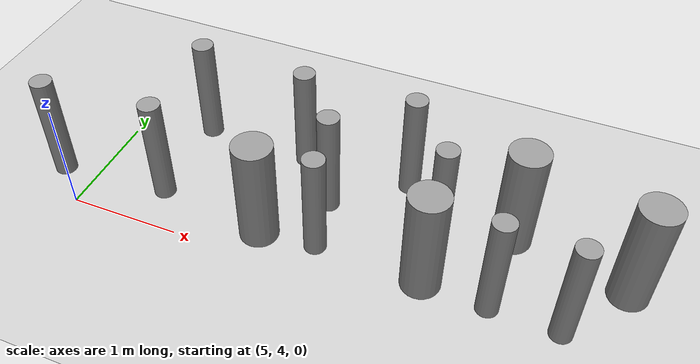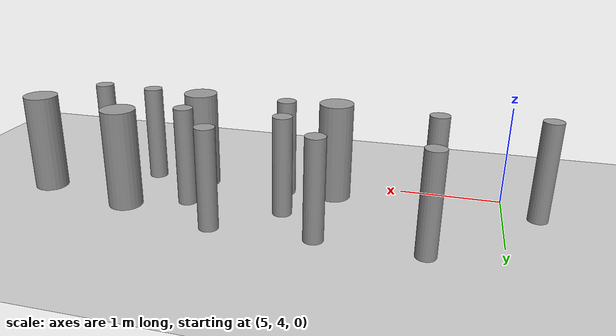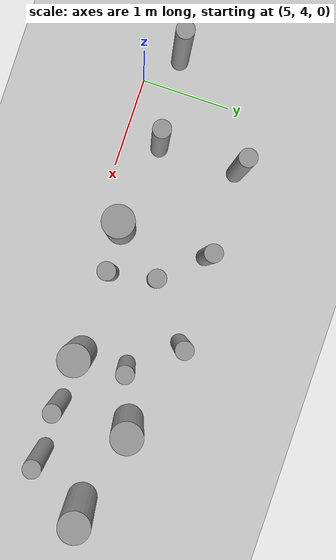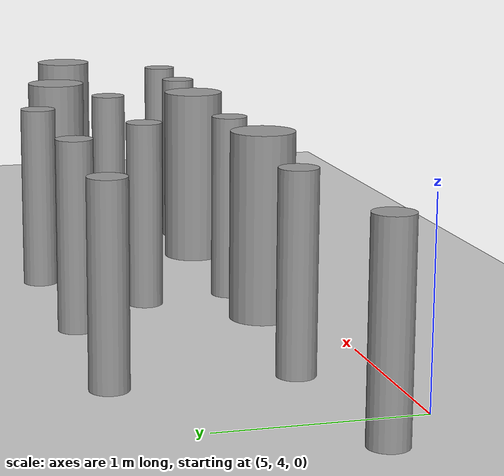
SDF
<sdf version="1.6">
 <world name="default">
  <model name="ground_plane">
   <static>1</static>
   <link name="link">
    <collision name="collision">
     <geometry><plane><normal>0 0 1</normal><size>100 100</size></plane></geometry>
     <surface><friction><ode><mu>100</mu><mu2>50</mu2></ode></friction></surface>
    </collision>
    <visual name="visual">
     <cast_shadows>0</cast_shadows>
     <geometry><plane><normal>0 0 1</normal><size>100 100</size></plane></geometry>
     <material>
      <script><uri>file://media/materials/scripts/gazebo.material</uri><name>Gazebo/Grey</name></script>
     </material>
    </visual>
   </link>
  </model>
  <model name="cyl_wall_clone_clone_3_clone_2_clone_2">
   <link name="link_0">
    <pose>-2.73893 -0.366465 0 0 -0 0</pose>
    <inertial>
     <mass>0.0374993</mass>
     <inertia>
      <ixx>0.00321281</ixx>
      <ixy>0</ixy>
      <ixz>0</ixz>
      <iyy>0.00321281</iyy>
      <iyz>0</iyz>
      <izz>0.000175774</izz>
     </inertia>
    </inertial>
    <visual name="visual">
     <geometry><cylinder><radius>0.0968661</radius><length>1</length></cylinder></geometry>
     <material>
      <lighting>1</lighting>
      <script><uri>file://media/materials/scripts/gazebo.material</uri><name>Gazebo/Grey</name></script>
      <ambient>0.3 0.3 0.3 1</ambient>
      <diffuse>0.7 0.7 0.7 1</diffuse>
      <specular>0.01 0.01 0.01 1</specular>
      <emissive>0 0 0 1</emissive>
     </material>
    </visual>
    <collision name="collision">
     <geometry><cylinder><radius>0.096866</radius><length>1</length></cylinder></geometry>
     <surface>
      <friction>
       <ode><mu>1</mu><mu2>1</mu2><fdir1>0 0 0</fdir1><slip1>0</slip1><slip2>0</slip2></ode>
       <torsional>
        <coefficient>1</coefficient>
        <patch_radius>0</patch_radius>
        <surface_radius>0</surface_radius>
        <use_patch_radius>1</use_patch_radius>
        <ode><slip>0</slip></ode>
       </torsional>
      </friction>
      <bounce><restitution_coefficient>0</restitution_coefficient><threshold>1e+06</threshold></bounce>
      <contact>
       <collide_without_contact>0</collide_without_contact>
       <collide_without_contact_bitmask>1</collide_without_contact_bitmask>
       <collide_bitmask>1</collide_bitmask>
       <ode>
        <soft_cfm>0</soft_cfm>
        <soft_erp>0.2</soft_erp>
        <kp>1e+13</kp>
        <kd>1</kd>
        <max_vel>0.01</max_vel>
        <min_depth>0</min_depth>
       </ode>
       <bullet>
        <split_impulse>1</split_impulse>
        <split_impulse_penetration_threshold>-0.01</split_impulse_penetration_threshold>
        <soft_cfm>0</soft_cfm>
        <soft_erp>0.2</soft_erp>
        <kp>1e+13</kp>
        <kd>1</kd>
       </bullet>
      </contact>
     </surface>
    </collision>
   </link>
   <link name="link_0_clone">
    <pose>-1.73893 0.61877 0 0 -0 0</pose>
    <inertial>
     <mass>0.0374993</mass>
     <inertia>
      <ixx>0.00321281</ixx>
      <ixy>0</ixy>
      <ixz>0</ixz>
      <iyy>0.00321281</iyy>
      <iyz>0</iyz>
      <izz>0.000175774</izz>
     </inertia>
    </inertial>
    <visual name="visual">
     <geometry><cylinder><radius>0.0968661</radius><length>1</length></cylinder></geometry>
     <material>
      <lighting>1</lighting>
      <script><uri>file://media/materials/scripts/gazebo.material</uri><name>Gazebo/Grey</name></script>
      <ambient>0.3 0.3 0.3 1</ambient>
      <diffuse>0.7 0.7 0.7 1</diffuse>
      <specular>0.01 0.01 0.01 1</specular>
      <emissive>0 0 0 1</emissive>
      <shader type="pixel"/>
     </material>
    </visual>
    <collision name="collision">
     <geometry><cylinder><radius>0.096866</radius><length>1</length></cylinder></geometry>
     <surface>
      <friction>
       <ode><mu>1</mu><mu2>1</mu2><fdir1>0 0 0</fdir1><slip1>0</slip1><slip2>0</slip2></ode>
       <torsional>
        <coefficient>1</coefficient>
        <patch_radius>0</patch_radius>
        <surface_radius>0</surface_radius>
        <use_patch_radius>1</use_patch_radius>
        <ode><slip>0</slip></ode>
       </torsional>
      </friction>
      <bounce><restitution_coefficient>0</restitution_coefficient><threshold>1e+06</threshold></bounce>
      <contact>
       <collide_without_contact>0</collide_without_contact>
       <collide_without_contact_bitmask>1</collide_without_contact_bitmask>
       <collide_bitmask>1</collide_bitmask>
       <ode>
        <soft_cfm>0</soft_cfm>
        <soft_erp>0.2</soft_erp>
        <kp>1e+13</kp>
        <kd>1</kd>
        <max_vel>0.01</max_vel>
        <min_depth>0</min_depth>
       </ode>
       <bullet>
        <split_impulse>1</split_impulse>
        <split_impulse_penetration_threshold>-0.01</split_impulse_penetration_threshold>
        <soft_cfm>0</soft_cfm>
        <soft_erp>0.2</soft_erp>
        <kp>1e+13</kp>
        <kd>1</kd>
       </bullet>
      </contact>
     </surface>
    </collision>
   </link>
   <link name="link_0_clone_clone">
    <pose>-0.327073 0.143919 0 0 -0 0</pose>
    <inertial>
     <mass>0.0374993</mass>
     <inertia>
      <ixx>0.00321281</ixx>
      <ixy>0</ixy>
      <ixz>0</ixz>
      <iyy>0.00321281</iyy>
      <iyz>0</iyz>
      <izz>0.000175774</izz>
     </inertia>
    </inertial>
    <visual name="visual">
     <geometry><cylinder><radius>0.0968661</radius><length>1</length></cylinder></geometry>
     <material>
      <lighting>1</lighting>
      <script><uri>file://media/materials/scripts/gazebo.material</uri><name>Gazebo/Grey</name></script>
      <ambient>0.3 0.3 0.3 1</ambient>
      <diffuse>0.7 0.7 0.7 1</diffuse>
      <specular>0.01 0.01 0.01 1</specular>
      <emissive>0 0 0 1</emissive>
      <shader type="pixel"/>
     </material>
    </visual>
    <collision name="collision">
     <geometry><cylinder><radius>0.096866</radius><length>1</length></cylinder></geometry>
     <surface>
      <friction>
       <ode><mu>1</mu><mu2>1</mu2><fdir1>0 0 0</fdir1><slip1>0</slip1><slip2>0</slip2></ode>
       <torsional>
        <coefficient>1</coefficient>
        <patch_radius>0</patch_radius>
        <surface_radius>0</surface_radius>
        <use_patch_radius>1</use_patch_radius>
        <ode><slip>0</slip></ode>
       </torsional>
      </friction>
      <bounce><restitution_coefficient>0</restitution_coefficient><threshold>1e+06</threshold></bounce>
      <contact>
       <collide_without_contact>0</collide_without_contact>
       <collide_without_contact_bitmask>1</collide_without_contact_bitmask>
       <collide_bitmask>1</collide_bitmask>
       <ode>
        <soft_cfm>0</soft_cfm>
        <soft_erp>0.2</soft_erp>
        <kp>1e+13</kp>
        <kd>1</kd>
        <max_vel>0.01</max_vel>
        <min_depth>0</min_depth>
       </ode>
       <bullet>
        <split_impulse>1</split_impulse>
        <split_impulse_penetration_threshold>-0.01</split_impulse_penetration_threshold>
        <soft_cfm>0</soft_cfm>
        <soft_erp>0.2</soft_erp>
        <kp>1e+13</kp>
        <kd>1</kd>
       </bullet>
      </contact>
     </surface>
    </collision>
   </link>
   <link name="link_0_clone_clone_0">
    <pose>1.26107 -0.419359 0 0 -0 0</pose>
    <inertial>
     <mass>0.0374993</mass>
     <inertia>
      <ixx>0.00321281</ixx>
      <ixy>0</ixy>
      <ixz>0</ixz>
      <iyy>0.00321281</iyy>
      <iyz>0</iyz>
      <izz>0.000175774</izz>
     </inertia>
    </inertial>
    <visual name="visual">
     <geometry><cylinder><radius>0.0968661</radius><length>1</length></cylinder></geometry>
     <material>
      <lighting>1</lighting>
      <script><uri>file://media/materials/scripts/gazebo.material</uri><name>Gazebo/Grey</name></script>
      <ambient>0.3 0.3 0.3 1</ambient>
      <diffuse>0.7 0.7 0.7 1</diffuse>
      <specular>0.01 0.01 0.01 1</specular>
      <emissive>0 0 0 1</emissive>
      <shader type="pixel"/>
     </material>
    </visual>
    <collision name="collision">
     <geometry><cylinder><radius>0.096866</radius><length>1</length></cylinder></geometry>
     <surface>
      <friction>
       <ode><mu>1</mu><mu2>1</mu2><fdir1>0 0 0</fdir1><slip1>0</slip1><slip2>0</slip2></ode>
       <torsional>
        <coefficient>1</coefficient>
        <patch_radius>0</patch_radius>
        <surface_radius>0</surface_radius>
        <use_patch_radius>1</use_patch_radius>
        <ode><slip>0</slip></ode>
       </torsional>
      </friction>
      <bounce><restitution_coefficient>0</restitution_coefficient><threshold>1e+06</threshold></bounce>
      <contact>
       <collide_without_contact>0</collide_without_contact>
       <collide_without_contact_bitmask>1</collide_without_contact_bitmask>
       <collide_bitmask>1</collide_bitmask>
       <ode>
        <soft_cfm>0</soft_cfm>
        <soft_erp>0.2</soft_erp>
        <kp>1e+13</kp>
        <kd>1</kd>
        <max_vel>0.01</max_vel>
        <min_depth>0</min_depth>
       </ode>
       <bullet>
        <split_impulse>1</split_impulse>
        <split_impulse_penetration_threshold>-0.01</split_impulse_penetration_threshold>
        <soft_cfm>0</soft_cfm>
        <soft_erp>0.2</soft_erp>
        <kp>1e+13</kp>
        <kd>1</kd>
       </bullet>
      </contact>
     </surface>
    </collision>
   </link>
   <link name="link_0_clone_clone_1">
    <pose>-1.73893 -0.277168 0 0 -0 0</pose>
    <inertial>
     <mass>0.0374993</mass>
     <inertia>
      <ixx>0.00321281</ixx>
      <ixy>0</ixy>
      <ixz>0</ixz>
      <iyy>0.00321281</iyy>
      <iyz>0</iyz>
      <izz>0.000175774</izz>
     </inertia>
    </inertial>
    <visual name="visual">
     <geometry><cylinder><radius>0.0968661</radius><length>1</length></cylinder></geometry>
     <material>
      <lighting>1</lighting>
      <script><uri>file://media/materials/scripts/gazebo.material</uri><name>Gazebo/Grey</name></script>
      <ambient>0.3 0.3 0.3 1</ambient>
      <diffuse>0.7 0.7 0.7 1</diffuse>
      <specular>0.01 0.01 0.01 1</specular>
      <emissive>0 0 0 1</emissive>
      <shader type="pixel"/>
     </material>
    </visual>
    <collision name="collision">
     <geometry><cylinder><radius>0.096866</radius><length>1</length></cylinder></geometry>
     <surface>
      <friction>
       <ode><mu>1</mu><mu2>1</mu2><fdir1>0 0 0</fdir1><slip1>0</slip1><slip2>0</slip2></ode>
       <torsional>
        <coefficient>1</coefficient>
        <patch_radius>0</patch_radius>
        <surface_radius>0</surface_radius>
        <use_patch_radius>1</use_patch_radius>
        <ode><slip>0</slip></ode>
       </torsional>
      </friction>
      <bounce><restitution_coefficient>0</restitution_coefficient><threshold>1e+06</threshold></bounce>
      <contact>
       <collide_without_contact>0</collide_without_contact>
       <collide_without_contact_bitmask>1</collide_without_contact_bitmask>
       <collide_bitmask>1</collide_bitmask>
       <ode>
        <soft_cfm>0</soft_cfm>
        <soft_erp>0.2</soft_erp>
        <kp>1e+13</kp>
        <kd>1</kd>
        <max_vel>0.01</max_vel>
        <min_depth>0</min_depth>
       </ode>
       <bullet>
        <split_impulse>1</split_impulse>
        <split_impulse_penetration_threshold>-0.01</split_impulse_penetration_threshold>
        <soft_cfm>0</soft_cfm>
        <soft_erp>0.2</soft_erp>
        <kp>1e+13</kp>
        <kd>1</kd>
       </bullet>
      </contact>
     </surface>
    </collision>
   </link>
   <link name="link_0_clone_clone_2">
    <pose>-0.738934 0.593961 0 0 -0 0</pose>
    <inertial>
     <mass>0.0374993</mass>
     <inertia>
      <ixx>0.00321281</ixx>
      <ixy>0</ixy>
      <ixz>0</ixz>
      <iyy>0.00321281</iyy>
      <iyz>0</iyz>
      <izz>0.000175774</izz>
     </inertia>
    </inertial>
    <visual name="visual">
     <geometry><cylinder><radius>0.0968661</radius><length>1</length></cylinder></geometry>
     <material>
      <lighting>1</lighting>
      <script><uri>file://media/materials/scripts/gazebo.material</uri><name>Gazebo/Grey</name></script>
      <ambient>0.3 0.3 0.3 1</ambient>
      <diffuse>0.7 0.7 0.7 1</diffuse>
      <specular>0.01 0.01 0.01 1</specular>
      <emissive>0 0 0 1</emissive>
      <shader type="pixel"/>
     </material>
    </visual>
    <collision name="collision">
     <geometry><cylinder><radius>0.096866</radius><length>1</length></cylinder></geometry>
     <surface>
      <friction>
       <ode><mu>1</mu><mu2>1</mu2><fdir1>0 0 0</fdir1><slip1>0</slip1><slip2>0</slip2></ode>
       <torsional>
        <coefficient>1</coefficient>
        <patch_radius>0</patch_radius>
        <surface_radius>0</surface_radius>
        <use_patch_radius>1</use_patch_radius>
        <ode><slip>0</slip></ode>
       </torsional>
      </friction>
      <bounce><restitution_coefficient>0</restitution_coefficient><threshold>1e+06</threshold></bounce>
      <contact>
       <collide_without_contact>0</collide_without_contact>
       <collide_without_contact_bitmask>1</collide_without_contact_bitmask>
       <collide_bitmask>1</collide_bitmask>
       <ode>
        <soft_cfm>0</soft_cfm>
        <soft_erp>0.2</soft_erp>
        <kp>1e+13</kp>
        <kd>1</kd>
        <max_vel>0.01</max_vel>
        <min_depth>0</min_depth>
       </ode>
       <bullet>
        <split_impulse>1</split_impulse>
        <split_impulse_penetration_threshold>-0.01</split_impulse_penetration_threshold>
        <soft_cfm>0</soft_cfm>
        <soft_erp>0.2</soft_erp>
        <kp>1e+13</kp>
        <kd>1</kd>
       </bullet>
      </contact>
     </surface>
    </collision>
   </link>
   <link name="link_0_clone_clone_3">
    <pose>0.261066 0.624849 0 0 -0 0</pose>
    <inertial>
     <mass>0.0374993</mass>
     <inertia>
      <ixx>0.00321281</ixx>
      <ixy>0</ixy>
      <ixz>0</ixz>
      <iyy>0.00321281</iyy>
      <iyz>0</iyz>
      <izz>0.000175774</izz>
     </inertia>
    </inertial>
    <visual name="visual">
     <geometry><cylinder><radius>0.0968661</radius><length>1</length></cylinder></geometry>
     <material>
      <lighting>1</lighting>
      <script><uri>file://media/materials/scripts/gazebo.material</uri><name>Gazebo/Grey</name></script>
      <ambient>0.3 0.3 0.3 1</ambient>
      <diffuse>0.7 0.7 0.7 1</diffuse>
      <specular>0.01 0.01 0.01 1</specular>
      <emissive>0 0 0 1</emissive>
      <shader type="pixel"/>
     </material>
    </visual>
    <collision name="collision">
     <geometry><cylinder><radius>0.096866</radius><length>1</length></cylinder></geometry>
     <surface>
      <friction>
       <ode><mu>1</mu><mu2>1</mu2><fdir1>0 0 0</fdir1><slip1>0</slip1><slip2>0</slip2></ode>
       <torsional>
        <coefficient>1</coefficient>
        <patch_radius>0</patch_radius>
        <surface_radius>0</surface_radius>
        <use_patch_radius>1</use_patch_radius>
        <ode><slip>0</slip></ode>
       </torsional>
      </friction>
      <bounce><restitution_coefficient>0</restitution_coefficient><threshold>1e+06</threshold></bounce>
      <contact>
       <collide_without_contact>0</collide_without_contact>
       <collide_without_contact_bitmask>1</collide_without_contact_bitmask>
       <collide_bitmask>1</collide_bitmask>
       <ode>
        <soft_cfm>0</soft_cfm>
        <soft_erp>0.2</soft_erp>
        <kp>1e+13</kp>
        <kd>1</kd>
        <max_vel>0.01</max_vel>
        <min_depth>0</min_depth>
       </ode>
       <bullet>
        <split_impulse>1</split_impulse>
        <split_impulse_penetration_threshold>-0.01</split_impulse_penetration_threshold>
        <soft_cfm>0</soft_cfm>
        <soft_erp>0.2</soft_erp>
        <kp>1e+13</kp>
        <kd>1</kd>
       </bullet>
      </contact>
     </surface>
    </collision>
   </link>
   <link name="link_0_clone_clone_4">
    <pose>-0.239049 -0.353105 0 0 -0 0</pose>
    <inertial>
     <mass>0.0374993</mass>
     <inertia>
      <ixx>0.00321281</ixx>
      <ixy>0</ixy>
      <ixz>0</ixz>
      <iyy>0.00321281</iyy>
      <iyz>0</iyz>
      <izz>0.000175774</izz>
     </inertia>
    </inertial>
    <visual name="visual">
     <geometry><cylinder><radius>0.0968661</radius><length>1</length></cylinder></geometry>
     <material>
      <lighting>1</lighting>
      <script><uri>file://media/materials/scripts/gazebo.material</uri><name>Gazebo/Grey</name></script>
      <ambient>0.3 0.3 0.3 1</ambient>
      <diffuse>0.7 0.7 0.7 1</diffuse>
      <specular>0.01 0.01 0.01 1</specular>
      <emissive>0 0 0 1</emissive>
      <shader type="pixel"/>
     </material>
    </visual>
    <collision name="collision">
     <geometry><cylinder><radius>0.096866</radius><length>1</length></cylinder></geometry>
     <surface>
      <friction>
       <ode><mu>1</mu><mu2>1</mu2><fdir1>0 0 0</fdir1><slip1>0</slip1><slip2>0</slip2></ode>
       <torsional>
        <coefficient>1</coefficient>
        <patch_radius>0</patch_radius>
        <surface_radius>0</surface_radius>
        <use_patch_radius>1</use_patch_radius>
        <ode><slip>0</slip></ode>
       </torsional>
      </friction>
      <bounce><restitution_coefficient>0</restitution_coefficient><threshold>1e+06</threshold></bounce>
      <contact>
       <collide_without_contact>0</collide_without_contact>
       <collide_without_contact_bitmask>1</collide_without_contact_bitmask>
       <collide_bitmask>1</collide_bitmask>
       <ode>
        <soft_cfm>0</soft_cfm>
        <soft_erp>0.2</soft_erp>
        <kp>1e+13</kp>
        <kd>1</kd>
        <max_vel>0.01</max_vel>
        <min_depth>0</min_depth>
       </ode>
       <bullet>
        <split_impulse>1</split_impulse>
        <split_impulse_penetration_threshold>-0.01</split_impulse_penetration_threshold>
        <soft_cfm>0</soft_cfm>
        <soft_erp>0.2</soft_erp>
        <kp>1e+13</kp>
        <kd>1</kd>
       </bullet>
      </contact>
     </surface>
    </collision>
   </link>
   <link name="link_0_clone_clone_5">
    <pose>0.672792 0.143919 0 0 -0 0</pose>
    <inertial>
     <mass>0.0374993</mass>
     <inertia>
      <ixx>0.00321281</ixx>
      <ixy>0</ixy>
      <ixz>0</ixz>
      <iyy>0.00321281</iyy>
      <iyz>0</iyz>
      <izz>0.000175774</izz>
     </inertia>
    </inertial>
    <visual name="visual">
     <geometry><cylinder><radius>0.0968661</radius><length>1</length></cylinder></geometry>
     <material>
      <lighting>1</lighting>
      <script><uri>file://media/materials/scripts/gazebo.material</uri><name>Gazebo/Grey</name></script>
      <ambient>0.3 0.3 0.3 1</ambient>
      <diffuse>0.7 0.7 0.7 1</diffuse>
      <specular>0.01 0.01 0.01 1</specular>
      <emissive>0 0 0 1</emissive>
      <shader type="pixel"/>
     </material>
    </visual>
    <collision name="collision">
     <geometry><cylinder><radius>0.096866</radius><length>1</length></cylinder></geometry>
     <surface>
      <friction>
       <ode><mu>1</mu><mu2>1</mu2><fdir1>0 0 0</fdir1><slip1>0</slip1><slip2>0</slip2></ode>
       <torsional>
        <coefficient>1</coefficient>
        <patch_radius>0</patch_radius>
        <surface_radius>0</surface_radius>
        <use_patch_radius>1</use_patch_radius>
        <ode><slip>0</slip></ode>
       </torsional>
      </friction>
      <bounce><restitution_coefficient>0</restitution_coefficient><threshold>1e+06</threshold></bounce>
      <contact>
       <collide_without_contact>0</collide_without_contact>
       <collide_without_contact_bitmask>1</collide_without_contact_bitmask>
       <collide_bitmask>1</collide_bitmask>
       <ode>
        <soft_cfm>0</soft_cfm>
        <soft_erp>0.2</soft_erp>
        <kp>1e+13</kp>
        <kd>1</kd>
        <max_vel>0.01</max_vel>
        <min_depth>0</min_depth>
       </ode>
       <bullet>
        <split_impulse>1</split_impulse>
        <split_impulse_penetration_threshold>-0.01</split_impulse_penetration_threshold>
        <soft_cfm>0</soft_cfm>
        <soft_erp>0.2</soft_erp>
        <kp>1e+13</kp>
        <kd>1</kd>
       </bullet>
      </contact>
     </surface>
    </collision>
   </link>
   <link name="link_0_clone_clone_6">
    <pose>1.84596 -0.433423 0 0 -0 0</pose>
    <inertial>
     <mass>0.0374993</mass>
     <inertia>
      <ixx>0.00321281</ixx>
      <ixy>0</ixy>
      <ixz>0</ixz>
      <iyy>0.00321281</iyy>
      <iyz>0</iyz>
      <izz>0.000175774</izz>
     </inertia>
    </inertial>
    <visual name="visual">
     <geometry><cylinder><radius>0.0968661</radius><length>1</length></cylinder></geometry>
     <material>
      <lighting>1</lighting>
      <script><uri>file://media/materials/scripts/gazebo.material</uri><name>Gazebo/Grey</name></script>
      <ambient>0.3 0.3 0.3 1</ambient>
      <diffuse>0.7 0.7 0.7 1</diffuse>
      <specular>0.01 0.01 0.01 1</specular>
      <emissive>0 0 0 1</emissive>
      <shader type="pixel"/>
     </material>
    </visual>
    <collision name="collision">
     <geometry><cylinder><radius>0.096866</radius><length>1</length></cylinder></geometry>
     <surface>
      <friction>
       <ode><mu>1</mu><mu2>1</mu2><fdir1>0 0 0</fdir1><slip1>0</slip1><slip2>0</slip2></ode>
       <torsional>
        <coefficient>1</coefficient>
        <patch_radius>0</patch_radius>
        <surface_radius>0</surface_radius>
        <use_patch_radius>1</use_patch_radius>
        <ode><slip>0</slip></ode>
       </torsional>
      </friction>
      <bounce><restitution_coefficient>0</restitution_coefficient><threshold>1e+06</threshold></bounce>
      <contact>
       <collide_without_contact>0</collide_without_contact>
       <collide_without_contact_bitmask>1</collide_without_contact_bitmask>
       <collide_bitmask>1</collide_bitmask>
       <ode>
        <soft_cfm>0</soft_cfm>
        <soft_erp>0.2</soft_erp>
        <kp>1e+13</kp>
        <kd>1</kd>
        <max_vel>0.01</max_vel>
        <min_depth>0</min_depth>
       </ode>
       <bullet>
        <split_impulse>1</split_impulse>
        <split_impulse_penetration_threshold>-0.01</split_impulse_penetration_threshold>
        <soft_cfm>0</soft_cfm>
        <soft_erp>0.2</soft_erp>
        <kp>1e+13</kp>
        <kd>1</kd>
       </bullet>
      </contact>
     </surface>
    </collision>
   </link>
   <link name="link_1">
    <pose>-0.738934 -0.397931 0 0 -0 0</pose>
    <inertial>
     <mass>0.117398</mass>
     <inertia>
      <ixx>0.0106445</ixx>
      <ixy>0</ixy>
      <ixz>0</ixz>
      <iyy>0.0106445</iyy>
      <iyz>0</iyz>
      <izz>0.00172278</izz>
     </inertia>
    </inertial>
    <visual name="visual">
     <geometry><cylinder><radius>0.171317</radius><length>1</length></cylinder></geometry>
     <material>
      <lighting>1</lighting>
      <script><uri>file://media/materials/scripts/gazebo.material</uri><name>Gazebo/Grey</name></script>
      <ambient>0.3 0.3 0.3 1</ambient>
      <diffuse>0.7 0.7 0.7 1</diffuse>
      <specular>0.01 0.01 0.01 1</specular>
      <emissive>0 0 0 1</emissive>
     </material>
    </visual>
    <collision name="collision">
     <geometry><cylinder><radius>0.171317</radius><length>1</length></cylinder></geometry>
     <surface>
      <friction>
       <ode><mu>1</mu><mu2>1</mu2><fdir1>0 0 0</fdir1><slip1>0</slip1><slip2>0</slip2></ode>
       <torsional>
        <coefficient>1</coefficient>
        <patch_radius>0</patch_radius>
        <surface_radius>0</surface_radius>
        <use_patch_radius>1</use_patch_radius>
        <ode><slip>0</slip></ode>
       </torsional>
      </friction>
      <bounce><restitution_coefficient>0</restitution_coefficient><threshold>1e+06</threshold></bounce>
      <contact>
       <collide_without_contact>0</collide_without_contact>
       <collide_without_contact_bitmask>1</collide_without_contact_bitmask>
       <collide_bitmask>1</collide_bitmask>
       <ode>
        <soft_cfm>0</soft_cfm>
        <soft_erp>0.2</soft_erp>
        <kp>1e+13</kp>
        <kd>1</kd>
        <max_vel>0.01</max_vel>
        <min_depth>0</min_depth>
       </ode>
       <bullet>
        <split_impulse>1</split_impulse>
        <split_impulse_penetration_threshold>-0.01</split_impulse_penetration_threshold>
        <soft_cfm>0</soft_cfm>
        <soft_erp>0.2</soft_erp>
        <kp>1e+13</kp>
        <kd>1</kd>
       </bullet>
      </contact>
     </surface>
    </collision>
   </link>
   <link name="link_1_clone">
    <pose>0.697784 -0.380861 0 0 -0 0</pose>
    <inertial>
     <mass>0.117398</mass>
     <inertia>
      <ixx>0.0106445</ixx>
      <ixy>0</ixy>
      <ixz>0</ixz>
      <iyy>0.0106445</iyy>
      <iyz>0</iyz>
      <izz>0.00172278</izz>
     </inertia>
    </inertial>
    <visual name="visual">
     <geometry><cylinder><radius>0.171317</radius><length>1</length></cylinder></geometry>
     <material>
      <lighting>1</lighting>
      <script><uri>file://media/materials/scripts/gazebo.material</uri><name>Gazebo/Grey</name></script>
      <ambient>0.3 0.3 0.3 1</ambient>
      <diffuse>0.7 0.7 0.7 1</diffuse>
      <specular>0.01 0.01 0.01 1</specular>
      <emissive>0 0 0 1</emissive>
      <shader type="pixel"/>
     </material>
    </visual>
    <collision name="collision">
     <geometry><cylinder><radius>0.171317</radius><length>1</length></cylinder></geometry>
     <surface>
      <friction>
       <ode><mu>1</mu><mu2>1</mu2><fdir1>0 0 0</fdir1><slip1>0</slip1><slip2>0</slip2></ode>
       <torsional>
        <coefficient>1</coefficient>
        <patch_radius>0</patch_radius>
        <surface_radius>0</surface_radius>
        <use_patch_radius>1</use_patch_radius>
        <ode><slip>0</slip></ode>
       </torsional>
      </friction>
      <bounce><restitution_coefficient>0</restitution_coefficient><threshold>1e+06</threshold></bounce>
      <contact>
       <collide_without_contact>0</collide_without_contact>
       <collide_without_contact_bitmask>1</collide_without_contact_bitmask>
       <collide_bitmask>1</collide_bitmask>
       <ode>
        <soft_cfm>0</soft_cfm>
        <soft_erp>0.2</soft_erp>
        <kp>1e+13</kp>
        <kd>1</kd>
        <max_vel>0.01</max_vel>
        <min_depth>0</min_depth>
       </ode>
       <bullet>
        <split_impulse>1</split_impulse>
        <split_impulse_penetration_threshold>-0.01</split_impulse_penetration_threshold>
        <soft_cfm>0</soft_cfm>
        <soft_erp>0.2</soft_erp>
        <kp>1e+13</kp>
        <kd>1</kd>
       </bullet>
      </contact>
     </surface>
    </collision>
   </link>
   <link name="link_1_clone_0">
    <pose>1.26107 0.358974 0 0 -0 0</pose>
    <inertial>
     <mass>0.117398</mass>
     <inertia>
      <ixx>0.0106445</ixx>
      <ixy>0</ixy>
      <ixz>0</ixz>
      <iyy>0.0106445</iyy>
      <iyz>0</iyz>
      <izz>0.00172278</izz>
     </inertia>
    </inertial>
    <visual name="visual">
     <geometry><cylinder><radius>0.171317</radius><length>1</length></cylinder></geometry>
     <material>
      <lighting>1</lighting>
      <script><uri>file://media/materials/scripts/gazebo.material</uri><name>Gazebo/Grey</name></script>
      <ambient>0.3 0.3 0.3 1</ambient>
      <diffuse>0.7 0.7 0.7 1</diffuse>
      <specular>0.01 0.01 0.01 1</specular>
      <emissive>0 0 0 1</emissive>
      <shader type="pixel"/>
     </material>
    </visual>
    <collision name="collision">
     <geometry><cylinder><radius>0.171317</radius><length>1</length></cylinder></geometry>
     <surface>
      <friction>
       <ode><mu>1</mu><mu2>1</mu2><fdir1>0 0 0</fdir1><slip1>0</slip1><slip2>0</slip2></ode>
       <torsional>
        <coefficient>1</coefficient>
        <patch_radius>0</patch_radius>
        <surface_radius>0</surface_radius>
        <use_patch_radius>1</use_patch_radius>
        <ode><slip>0</slip></ode>
       </torsional>
      </friction>
      <bounce><restitution_coefficient>0</restitution_coefficient><threshold>1e+06</threshold></bounce>
      <contact>
       <collide_without_contact>0</collide_without_contact>
       <collide_without_contact_bitmask>1</collide_without_contact_bitmask>
       <collide_bitmask>1</collide_bitmask>
       <ode>
        <soft_cfm>0</soft_cfm>
        <soft_erp>0.2</soft_erp>
        <kp>1e+13</kp>
        <kd>1</kd>
        <max_vel>0.01</max_vel>
        <min_depth>0</min_depth>
       </ode>
       <bullet>
        <split_impulse>1</split_impulse>
        <split_impulse_penetration_threshold>-0.01</split_impulse_penetration_threshold>
        <soft_cfm>0</soft_cfm>
        <soft_erp>0.2</soft_erp>
        <kp>1e+13</kp>
        <kd>1</kd>
       </bullet>
      </contact>
     </surface>
    </collision>
   </link>
   <link name="link_1_clone_1">
    <pose>2.26107 0.143919 0 0 -0 0</pose>
    <inertial>
     <mass>0.117398</mass>
     <inertia>
      <ixx>0.0106445</ixx>
      <ixy>0</ixy>
      <ixz>0</ixz>
      <iyy>0.0106445</iyy>
      <iyz>0</iyz>
      <izz>0.00172278</izz>
     </inertia>
    </inertial>
    <visual name="visual">
     <geometry><cylinder><radius>0.171317</radius><length>1</length></cylinder></geometry>
     <material>
      <lighting>1</lighting>
      <script><uri>file://media/materials/scripts/gazebo.material</uri><name>Gazebo/Grey</name></script>
      <ambient>0.3 0.3 0.3 1</ambient>
      <diffuse>0.7 0.7 0.7 1</diffuse>
      <specular>0.01 0.01 0.01 1</specular>
      <emissive>0 0 0 1</emissive>
      <shader type="pixel"/>
     </material>
    </visual>
    <collision name="collision">
     <geometry><cylinder><radius>0.171317</radius><length>1</length></cylinder></geometry>
     <surface>
      <friction>
       <ode><mu>1</mu><mu2>1</mu2><fdir1>0 0 0</fdir1><slip1>0</slip1><slip2>0</slip2></ode>
       <torsional>
        <coefficient>1</coefficient>
        <patch_radius>0</patch_radius>
        <surface_radius>0</surface_radius>
        <use_patch_radius>1</use_patch_radius>
        <ode><slip>0</slip></ode>
       </torsional>
      </friction>
      <bounce><restitution_coefficient>0</restitution_coefficient><threshold>1e+06</threshold></bounce>
      <contact>
       <collide_without_contact>0</collide_without_contact>
       <collide_without_contact_bitmask>1</collide_without_contact_bitmask>
       <collide_bitmask>1</collide_bitmask>
       <ode>
        <soft_cfm>0</soft_cfm>
        <soft_erp>0.2</soft_erp>
        <kp>1e+13</kp>
        <kd>1</kd>
        <max_vel>0.01</max_vel>
        <min_depth>0</min_depth>
       </ode>
       <bullet>
        <split_impulse>1</split_impulse>
        <split_impulse_penetration_threshold>-0.01</split_impulse_penetration_threshold>
        <soft_cfm>0</soft_cfm>
        <soft_erp>0.2</soft_erp>
        <kp>1e+13</kp>
        <kd>1</kd>
       </bullet>
      </contact>
     </surface>
    </collision>
   </link>
   <static>1</static>
   <pose>7.41017 4.68581 0.5 0 -0 0</pose>
  </model>
 </world>
</sdf>
